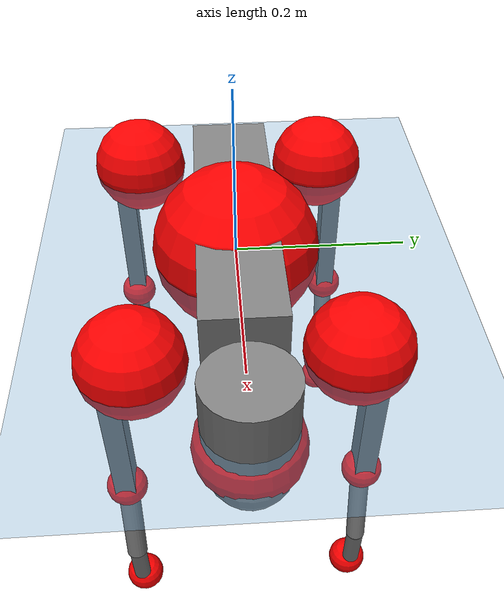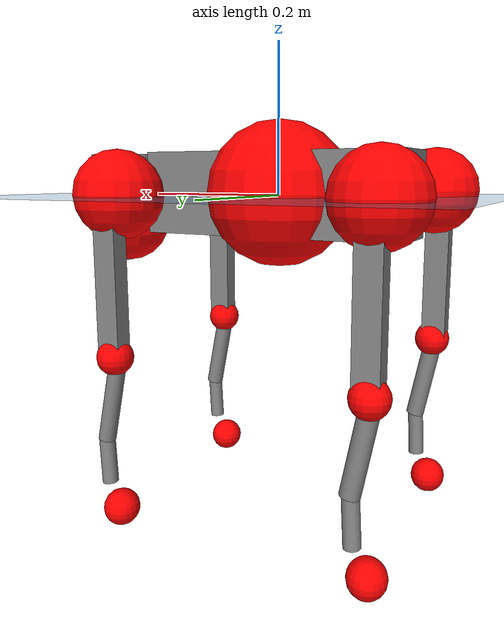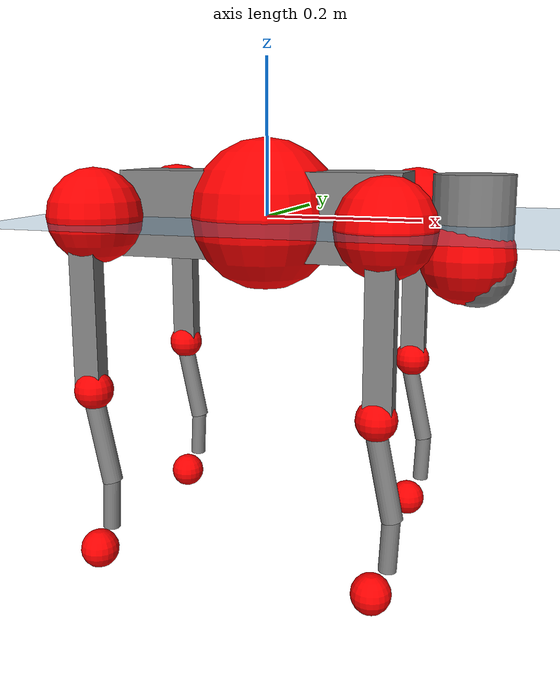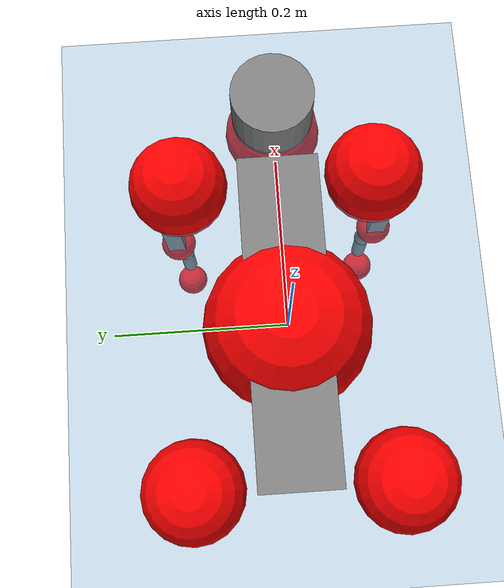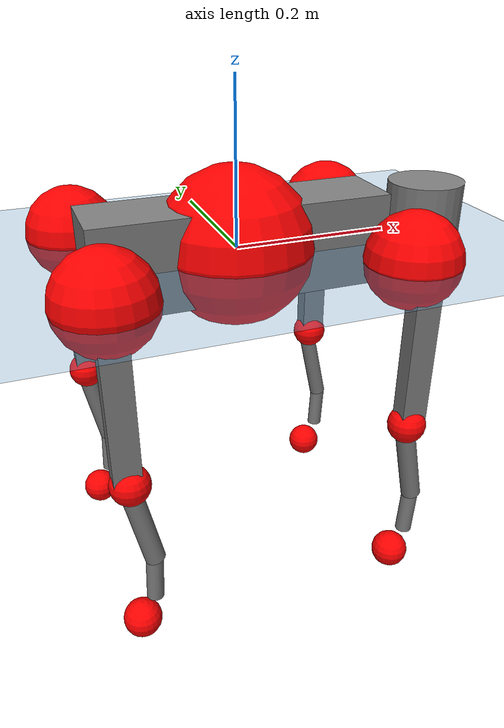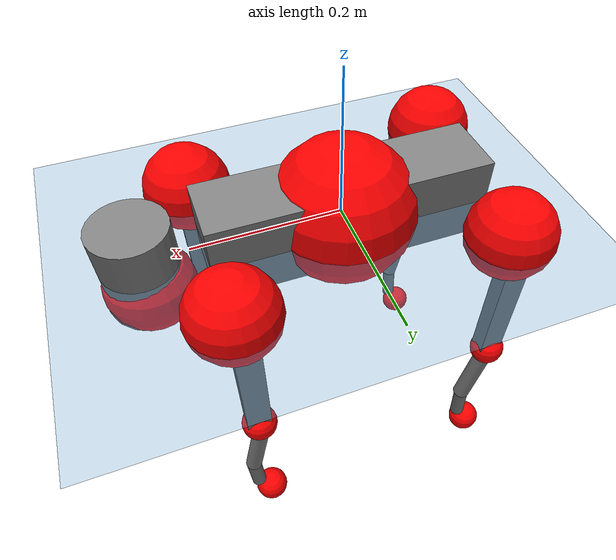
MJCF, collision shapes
<mujoco model="go2">
  <compiler angle="radian" assetdir="assets" balanceinertia="true" inertiafromgeom="false"/>

  <option timestep="0.005" density="1.2" viscosity="2e-05"/>

  <size nkey="1"/>

  <visual>
    <quality shadowsize="8192"/>
    <map shadowclip="0.5"/>
  </visual>

  <default>
    <default class="/">
      <geom contype="0" conaffinity="0" group="1" solref="-1000 -80"/>
      <site size="0.01 0.005 0.005" group="5"/>
      <general forcelimited="true" biastype="affine" gainprm="20" biasprm="0 -20 -0.5"/>
      <default class="go2">
        <joint armature="0.01" damping="0.01" frictionloss="0.2"/>
        <geom condim="1" margin="0.001"/>
        <default class="visual">
          <geom type="mesh" group="2"/>
        </default>
        <default class="collision">
          <geom group="3"/>
          <default class="foot">
            <geom size="0.022 0 0" condim="6" priority="1" friction="0.8 0.02 0.01" solimp="0.015 1 0.022"/>
          </default>
        </default>
        <default class="reward_collision_sphere">
          <geom group="5" rgba="1 0 0 1"/>
        </default>
      </default>
    </default>
  </default>

  <asset>
    <texture type="skybox" colorspace="auto" name="//unnamed_texture_0" builtin="gradient" rgb1="0.95 0.95 0.95" rgb2="0.95 0.95 0.95" width="100" height="600"/>
    <texture type="2d" colorspace="auto" name="texplane" builtin="checker" rgb1="0.345 0.575 0.748" rgb2="0.345 0.575 0.748" markrgb="1 1 1" width="512" height="512"/>
    <material name="MatPlane" class="/" texture="texplane" texuniform="true" texrepeat="2 2" specular="0.9"/>
    <material name="metal" class="/" rgba="0.9 0.95 0.95 1"/>
    <material name="black" class="/" rgba="0 0 0 1"/>
    <material name="white" class="/"/>
    <material name="gray" class="/" rgba="0.671705 0.692426 0.77427 1"/>
    <mesh name="base_0" class="/" file="base_0.obj"/>
    <mesh name="base_1" class="/" file="base_1.obj"/>
    <mesh name="base_2" class="/" file="base_2.obj"/>
    <mesh name="base_3" class="/" file="base_3.obj"/>
    <mesh name="base_4" class="/" file="base_4.obj"/>
    <mesh name="hip_0" class="/" file="hip_0.obj"/>
    <mesh name="hip_1" class="/" file="hip_1.obj"/>
    <mesh name="thigh_0" class="/" file="thigh_0.obj"/>
    <mesh name="thigh_1" class="/" file="thigh_1.obj"/>
    <mesh name="thigh_mirror_0" class="/" file="thigh_mirror_0.obj"/>
    <mesh name="thigh_mirror_1" class="/" file="thigh_mirror_1.obj"/>
    <mesh name="calf_0" class="/" file="calf_0.obj"/>
    <mesh name="calf_1" class="/" file="calf_1.obj"/>
    <mesh name="calf_mirror_0" class="/" file="calf_mirror_0.obj"/>
    <mesh name="calf_mirror_1" class="/" file="calf_mirror_1.obj"/>
    <mesh name="foot" class="/" file="foot.obj"/>
  </asset>

  <worldbody>
    <geom name="floor" class="/" size="100 100 0.125" type="plane" group="0" material="MatPlane"/>
    <light name="toplight_shadow" class="/" pos="0 0 5" dir="0.0990148 0.0990148 -0.990148" type="directional" ambient="0.04 0.04 0.04" diffuse="0.55 0.55 0.55" specular="0.12 0.12 0.12"/>
    <light name="toplight_fill" class="/" pos="0 0 5" dir="0.0990148 0.0990148 -0.990148" type="directional" castshadow="false" ambient="0.04 0.04 0.04" diffuse="0.3 0.3 0.3" specular="0.08 0.08 0.08"/>
    <body name="trunk" childclass="go2" pos="-0.00232677 0.000347398 0.00269945" quat="0.999999 -0.00100119 -0.000814746 -0.000366239">
      <inertial pos="0.0218967 -0.000144744 -0.00825879" quat="0.00869588 0.710843 -0.00392728 0.703286" mass="6.47418" diaginertia="0.0723032 0.109821 0.0258357"/>
      <joint name="//unnamed_joint_0" type="free" armature="0" damping="0" frictionloss="0"/>
      <geom name="//unnamed_geom_1" class="visual" material="black" mesh="base_0"/>
      <geom name="//unnamed_geom_2" class="visual" material="black" mesh="base_1"/>
      <geom name="//unnamed_geom_3" class="visual" material="black" mesh="base_2"/>
      <geom name="//unnamed_geom_4" class="visual" material="white" mesh="base_3"/>
      <geom name="//unnamed_geom_5" class="visual" material="gray" mesh="base_4"/>
      <geom name="trunk_1" class="collision" size="0.185235 0.0460379 0.0561318" type="box"/>
      <geom name="trunk_2" class="collision" size="0.0492384 0.0443146" pos="0.263691 0 0.0100766" type="cylinder"/>
      <geom name="trunk_3" class="collision" size="0.0462841" pos="0.271093 0 -0.0604597"/>
      <geom name="//unnamed_geom_9" class="reward_collision_sphere" size="0.0984768"/>
      <geom name="//unnamed_geom_10" class="reward_collision_sphere" size="0.0590861" pos="0.259065 0 -0.0453447"/>
      <site name="imu" pos="-0.0281088 0.00121572 0.0468781" size="0.00984768"/>
      <camera name="track" pos="0 -2.04282 0" quat="0.707107 0.707107 0 0" mode="trackcom"/>
      <camera name="ego_camera" pos="0.288672 0 0.0453447" quat="-0.5 -0.5 0.5 0.5"/>
      <body name="FL_hip" pos="0.17763 0.0469313 -0.000971206" quat="1 0.000326807 -0.000382961 -2.17345e-05">
        <inertial pos="-0.00503375 0.000926708 0.000196603" quat="0.496354 0.498661 0.50506 0.499885" mass="0.688386" diaginertia="0.000611288 0.000677818 0.000516998"/>
        <joint name="FL_hip_joint" pos="0 0 0" axis="0.999882 -0.000412703 0.0153846" range="-1.04332 1.10234" armature="0.00944352" damping="0.0190939" frictionloss="0.179724"/>
        <geom name="//unnamed_geom_11" class="visual" material="metal" mesh="hip_0"/>
        <geom name="//unnamed_geom_12" class="visual" material="gray" mesh="hip_1"/>
        <geom name="//unnamed_geom_13" class="collision" size="0.0452993 0.0196954" pos="0 0.0817129 0" quat="0.707107 0.707107 0 0" type="cylinder"/>
        <geom name="//unnamed_geom_14" class="reward_collision_sphere" size="0.0590861" pos="0 0.0714988 0"/>
        <body name="FL_thigh" pos="-0.00271175 0.0959525 0.00209559" quat="1 -1.69322e-05 -0.000268187 9.56473e-05">
          <inertial pos="-0.00444284 -0.0223802 -0.0305622" quat="0.83081 0.0843068 -0.0239766 0.549611" mass="1.07867" diaginertia="0.00401251 0.00664548 0.000941786"/>
          <joint name="FL_thigh_joint" pos="0 0 0" axis="-0.009197 0.999941 -0.00576256" stiffness="0.000859887" range="-1.57324 3.52658" armature="0.00868854" damping="0.0114607" frictionloss="0.174314"/>
          <geom name="//unnamed_geom_15" class="visual" material="metal" mesh="thigh_0"/>
          <geom name="//unnamed_geom_16" class="visual" material="gray" mesh="thigh_1"/>
          <geom name="//unnamed_geom_17" class="collision" size="0.104878 0.0120634 0.0167411" pos="0 0 -0.107316" quat="0.707107 0 0.707107 0" type="box"/>
          <body name="FL_calf" pos="-0.00120066 -0.000421921 -0.216309" quat="1 0.000390227 -0.00083399 0.000246805">
            <inertial pos="0.0064807 0.00142394 -0.14476" quat="0.707742 -0.000463697 -0.00504012 0.706452" mass="0.225081" diaginertia="0.000986298 0.00160089 5.54468e-05"/>
            <joint name="FL_calf_joint" pos="0 0 0" axis="0.00304105 0.999993 0.00217465" stiffness="2.69253e-05" range="-2.68569 -0.854904" armature="0.0110623" damping="0.00256078" frictionloss="0.188691"/>
            <geom name="//unnamed_geom_18" class="visual" material="gray" mesh="calf_0"/>
            <geom name="//unnamed_geom_19" class="visual" material="black" mesh="calf_1"/>
            <geom name="FL_calf0" class="collision" size="0.0118172 0.0590861" pos="0.00740186 0 -0.0604597" quat="0.994493 0 -0.104807 0" type="cylinder"/>
            <geom name="//unnamed_geom_21" class="collision" size="0.0108325 0.032005" pos="0.0185046 0 -0.149134" quat="0.999688 0 0.0249974 0" type="cylinder"/>
            <geom name="//unnamed_geom_22" class="visual" pos="0 0 -0.214632" quat="1 0 0 0" material="black" mesh="foot"/>
            <geom name="FL_foot" class="foot" size="0.017559" pos="-0.00185046 0 -0.214632"/>
            <geom name="//unnamed_geom_24" class="reward_collision_sphere" size="0.0246192"/>
            <geom name="//unnamed_geom_25" class="reward_collision_sphere" size="0.0246192" pos="-0.00185046 0 -0.214632"/>
            <site name="FL_foot" class="foot" pos="-0.00185046 0 -0.214632" size="0.00984768"/>
          </body>
        </body>
      </body>
      <body name="FR_hip" pos="0.180124 -0.0448339 -0.00205999" quat="1 0.000286158 -0.000114085 -0.000574327">
        <inertial pos="-0.00691607 0.000813371 -0.00215492" quat="0.501663 0.50359 0.492787 0.501889" mass="0.659959" diaginertia="0.000603936 0.000667567 0.000500049"/>
        <joint name="FR_hip_joint" pos="0 0 0" axis="0.999998 -0.00184771 -0.000925677" stiffness="0.0127458" range="-1.01958 1.05817" armature="0.00949039" damping="0.00620408" frictionloss="0.223916"/>
        <geom name="//unnamed_geom_26" class="visual" pos="0 1.19792e-10 5.13812e-09" quat="4.63268e-05 1 0 0" material="metal" mesh="hip_0"/>
        <geom name="//unnamed_geom_27" class="visual" pos="0 1.94197e-10 -1.27085e-08" quat="4.63268e-05 1 0 0" material="gray" mesh="hip_1"/>
        <geom name="//unnamed_geom_28" class="collision" size="0.0452993 0.0196954" pos="0 -0.0817129 0" quat="0.707107 0.707107 0 0" type="cylinder"/>
        <geom name="//unnamed_geom_29" class="reward_collision_sphere" size="0.0590861" pos="0 -0.0714988 0"/>
        <body name="FR_thigh" pos="0.00246775 -0.0995103 0.000673952" quat="1 -2.92321e-06 3.06649e-05 1.12326e-05">
          <inertial pos="-0.00467192 0.0203436 -0.0351645" quat="0.546628 -0.0252279 0.0927652 0.831839" mass="1.08855" diaginertia="0.00385179 0.00632631 0.000883293"/>
          <joint name="FR_thigh_joint" pos="0 0 0" axis="0.00820159 -0.999949 0.005953" stiffness="0.00060148" range="-3.43747 1.53008" armature="0.00900904" damping="0.0156893" frictionloss="0.223938"/>
          <geom name="//unnamed_geom_30" class="visual" material="metal" mesh="thigh_mirror_0"/>
          <geom name="//unnamed_geom_31" class="visual" material="gray" mesh="thigh_mirror_1"/>
          <geom name="//unnamed_geom_32" class="collision" size="0.104878 0.0120634 0.0167411" pos="0 0 -0.107316" quat="0.707107 0 0.707107 0" type="box"/>
          <body name="FR_calf" pos="-0.00250872 -0.000194484 -0.213926" quat="0.999999 0.000817074 0.000638724 0.000420565">
            <inertial pos="0.00476882 0.000805811 -0.142228" quat="0.703881 -0.0126938 0.00217346 0.710201" mass="0.239472" diaginertia="0.00105614 0.00158998 5.56868e-05"/>
            <joint name="FR_calf_joint" pos="0 0 0" axis="-3.30027e-05 -1 -0.00033161" stiffness="0.00279475" range="0.85985 2.67638" armature="0.0102503" damping="0.00258702" frictionloss="0.223443"/>
            <geom name="//unnamed_geom_33" class="visual" material="gray" mesh="calf_mirror_0"/>
            <geom name="//unnamed_geom_34" class="visual" material="black" mesh="calf_mirror_1"/>
            <geom name="FR_calf0" class="collision" size="0.012802 0.0590861" pos="0.00925232 0 -0.0604597" quat="0.995004 0 -0.0998334 0" type="cylinder"/>
            <geom name="//unnamed_geom_36" class="collision" size="0.0108325 0.032005" pos="0.0185046 0 -0.149134" quat="0.999688 0 0.0249974 0" type="cylinder"/>
            <geom name="//unnamed_geom_37" class="visual" pos="0 0 -0.214632" quat="1 0 0 0" material="black" mesh="foot"/>
            <geom name="FR_foot" class="foot" size="0.0218114" pos="-0.00185046 0 -0.214632"/>
            <geom name="//unnamed_geom_39" class="reward_collision_sphere" size="0.0246192"/>
            <geom name="//unnamed_geom_40" class="reward_collision_sphere" size="0.0246192" pos="-0.00185046 0 -0.214632"/>
            <site name="FR_foot" class="foot" pos="-0.00185046 0 -0.214632" size="0.00984768"/>
          </body>
        </body>
      </body>
      <body name="RL_hip" pos="-0.179077 0.0457758 0.000455977" quat="1 0.000189063 0.000639191 7.25093e-05">
        <inertial pos="0.0045046 0.00390348 0.00260066" quat="0.50666 0.499784 0.493881 0.499593" mass="0.639617" diaginertia="0.000570498 0.000636289 0.000476322"/>
        <joint name="RL_hip_joint" pos="0 0 0" axis="-0.999997 0.00232127 -0.0010391" range="-1.03195 1.09765" armature="0.00970329" damping="0.0142686" frictionloss="0.198862"/>
        <geom name="//unnamed_geom_41" class="visual" pos="7.18085e-10 0 1.40761e-07" quat="4.63268e-05 0 1 0" material="metal" mesh="hip_0"/>
        <geom name="//unnamed_geom_42" class="visual" pos="1.1641e-09 0 1.24835e-07" quat="4.63268e-05 0 1 0" material="gray" mesh="hip_1"/>
        <geom name="//unnamed_geom_43" class="collision" size="0.0452993 0.0196954" pos="0 0.0817129 0" quat="0.707107 0.707107 0 0" type="cylinder"/>
        <geom name="//unnamed_geom_44" class="reward_collision_sphere" size="0.0590861" pos="0 0.0714988 0"/>
        <body name="RL_thigh" pos="-4.80781e-05 0.0941932 0.00147001" quat="0.999999 0.00126962 0.000380125 -0.000295">
          <inertial pos="-0.000976313 -0.019785 -0.0315397" quat="0.830587 0.0815402 -0.0199695 0.550525" mass="1.04242" diaginertia="0.00405694 0.00649339 0.000926187"/>
          <joint name="RL_thigh_joint" pos="0 0 0" axis="0.01016 0.999916 -0.0080244" range="-0.572495 4.503" armature="0.0107264" damping="0.00304074" frictionloss="0.192473"/>
          <geom name="//unnamed_geom_45" class="visual" material="metal" mesh="thigh_0"/>
          <geom name="//unnamed_geom_46" class="visual" material="gray" mesh="thigh_1"/>
          <geom name="//unnamed_geom_47" class="collision" size="0.104878 0.0120634 0.0167411" pos="0 0 -0.107316" quat="0.707107 0 0.707107 0" type="box"/>
          <body name="RL_calf" pos="-0.00230469 0.00138206 -0.217617" quat="1 -0.000229113 0.000179648 0.000123423">
            <inertial pos="0.00823764 -0.000874155 -0.145239" quat="0.715464 -0.00101469 0.00236966 0.698645" mass="0.221898" diaginertia="0.000956805 0.00157486 5.51486e-05"/>
            <joint name="RL_calf_joint" pos="0 0 0" axis="-0.00268207 0.999978 -0.0060707" stiffness="0.0113145" range="-2.7215 -0.866485" armature="0.00937106" damping="0.0032714" frictionloss="0.192598"/>
            <geom name="//unnamed_geom_48" class="visual" material="gray" mesh="calf_0"/>
            <geom name="//unnamed_geom_49" class="visual" material="black" mesh="calf_1"/>
            <geom name="RL_calf0" class="collision" size="0.012802 0.0590861" pos="0.00925232 0 -0.0604597" quat="0.995004 0 -0.0998334 0" type="cylinder"/>
            <geom name="//unnamed_geom_51" class="collision" size="0.0108325 0.032005" pos="0.0185046 0 -0.149134" quat="0.999688 0 0.0249974 0" type="cylinder"/>
            <geom name="//unnamed_geom_52" class="visual" pos="0 0 -0.214632" quat="1 0 0 0" material="black" mesh="foot"/>
            <geom name="RL_foot" class="foot" size="0.0201651" pos="-0.00185046 0 -0.214632"/>
            <geom name="//unnamed_geom_54" class="reward_collision_sphere" size="0.0246192"/>
            <geom name="//unnamed_geom_55" class="reward_collision_sphere" size="0.0246192" pos="-0.00185046 0 -0.214632"/>
            <site name="RL_foot" class="foot" pos="-0.00185046 0 -0.214632" size="0.00984768"/>
          </body>
        </body>
      </body>
      <body name="RR_hip" pos="-0.18137 -0.0472311 0.00335291" quat="1 -0.000654239 -3.35613e-05 -1.24639e-05">
        <inertial pos="0.00284075 0.000514558 0.00114728" quat="0.494415 0.507768 0.499265 0.498458" mass="0.668777" diaginertia="0.00061905 0.000673427 0.000509235"/>
        <joint name="RR_hip_joint" pos="0 0 0" axis="-0.999993 0.000198756 0.00366915" range="-1.04074 1.09796" armature="0.00846005" damping="0" frictionloss="0.196389"/>
        <geom name="//unnamed_geom_56" class="visual" pos="-7.14756e-10 1.19792e-10 1.35623e-07" quat="2.14617e-09 4.63268e-05 4.63268e-05 -1" material="metal" mesh="hip_0"/>
        <geom name="//unnamed_geom_57" class="visual" pos="-1.17234e-09 1.94197e-10 1.37544e-07" quat="2.14617e-09 4.63268e-05 4.63268e-05 -1" material="gray" mesh="hip_1"/>
        <geom name="//unnamed_geom_58" class="collision" size="0.0452993 0.0196954" pos="0 -0.0817129 0" quat="0.707107 0.707107 0 0" type="cylinder"/>
        <geom name="//unnamed_geom_59" class="reward_collision_sphere" size="0.0590861" pos="0 -0.0714988 0"/>
        <body name="RR_thigh" pos="-0.00153937 -0.0955592 0.00100156" quat="1 -4.84281e-05 -1.6987e-05 -3.37256e-06">
          <inertial pos="-0.00413472 0.0250673 -0.0307286" quat="0.551041 -0.0186295 0.0859721 0.829828" mass="1.05744" diaginertia="0.00388052 0.00633447 0.000881046"/>
          <joint name="RR_thigh_joint" pos="0 0 0" axis="-0.000395686 -0.999951 -0.00989564" range="-4.49382 0.472303" armature="0.00911157" damping="0.0219335" frictionloss="0.198839"/>
          <geom name="//unnamed_geom_60" class="visual" material="metal" mesh="thigh_mirror_0"/>
          <geom name="//unnamed_geom_61" class="visual" material="gray" mesh="thigh_mirror_1"/>
          <geom name="//unnamed_geom_62" class="collision" size="0.104878 0.0120634 0.0167411" pos="0 0 -0.107316" quat="0.707107 0 0.707107 0" type="box"/>
          <body name="RR_calf" pos="0.00330205 -0.000443381 -0.217379" quat="1 -0.00026618 -0.000424599 6.06221e-05">
            <inertial pos="0.0063451 -0.00192478 -0.140278" quat="0.701411 -0.00528438 0.00554621 0.712716" mass="0.226614" diaginertia="0.000989301 0.00162464 5.36763e-05"/>
            <joint name="RR_calf_joint" pos="0 0 0" axis="-0.0112264 -0.999884 -0.0102465" stiffness="0.00507032" range="0.843594 2.71326" armature="0.0098912" damping="0.00316201" frictionloss="0.223332"/>
            <geom name="//unnamed_geom_63" class="visual" material="gray" mesh="calf_mirror_0"/>
            <geom name="//unnamed_geom_64" class="visual" material="black" mesh="calf_mirror_1"/>
            <geom name="RR_calf0" class="collision" size="0.012802 0.0590861" pos="0.00925232 0 -0.0604597" quat="0.995004 0 -0.0998334 0" type="cylinder"/>
            <geom name="//unnamed_geom_66" class="collision" size="0.0108325 0.032005" pos="0.0185046 0 -0.149134" quat="0.999688 0 0.0249974 0" type="cylinder"/>
            <geom name="//unnamed_geom_67" class="visual" pos="0 0 -0.214632" quat="1 0 0 0" material="black" mesh="foot"/>
            <geom name="RR_foot" class="foot" size="0.0207104" pos="-0.00185046 0 -0.214632"/>
            <geom name="//unnamed_geom_69" class="reward_collision_sphere" size="0.0246192"/>
            <geom name="//unnamed_geom_70" class="reward_collision_sphere" size="0.0246192" pos="-0.00185046 0 -0.214632"/>
            <site name="RR_foot" class="foot" pos="-0.00185046 0 -0.214632" size="0.00984768"/>
          </body>
        </body>
      </body>
    </body>
  </worldbody>

  <contact>
    <pair class="/" geom1="floor" geom2="FL_foot" name="//unnamed_contact_0"/>
    <pair class="/" geom1="floor" geom2="FR_foot" name="//unnamed_contact_1"/>
    <pair class="/" geom1="floor" geom2="RL_foot" name="//unnamed_contact_2"/>
    <pair class="/" geom1="floor" geom2="RR_foot" name="//unnamed_contact_3"/>
  </contact>

  <actuator>
    <general name="FL_hip" class="/" joint="FL_hip_joint" forcerange="-22.5233 22.5233" gainprm="18.6299" biasprm="0 -18.6299 -0.46414"/>
    <general name="FL_thigh" class="/" joint="FL_thigh_joint" forcerange="-24.4966 24.4966" gainprm="18.6299" biasprm="0 -18.6299 -0.46414"/>
    <general name="FL_calf" class="/" joint="FL_calf_joint" forcerange="-40.1097 40.1097" gainprm="18.6299" biasprm="0 -18.6299 -0.46414"/>
    <general name="FR_hip" class="/" joint="FR_hip_joint" forcerange="-22.4596 22.4596" gainprm="18.6299" biasprm="0 -18.6299 -0.46414"/>
    <general name="FR_thigh" class="/" joint="FR_thigh_joint" forcerange="-24.6257 24.6257" gainprm="18.6299" biasprm="0 -18.6299 -0.46414"/>
    <general name="FR_calf" class="/" joint="FR_calf_joint" forcerange="-41.5845 41.5845" gainprm="18.6299" biasprm="0 -18.6299 -0.46414"/>
    <general name="RL_hip" class="/" joint="RL_hip_joint" forcerange="-23.5954 23.5954" gainprm="18.6299" biasprm="0 -18.6299 -0.46414"/>
    <general name="RL_thigh" class="/" joint="RL_thigh_joint" forcerange="-22.24 22.24" gainprm="18.6299" biasprm="0 -18.6299 -0.46414"/>
    <general name="RL_calf" class="/" joint="RL_calf_joint" forcerange="-49.2232 49.2232" gainprm="18.6299" biasprm="0 -18.6299 -0.46414"/>
    <general name="RR_hip" class="/" joint="RR_hip_joint" forcerange="-22.5245 22.5245" gainprm="18.6299" biasprm="0 -18.6299 -0.46414"/>
    <general name="RR_thigh" class="/" joint="RR_thigh_joint" forcerange="-23.3859 23.3859" gainprm="18.6299" biasprm="0 -18.6299 -0.46414"/>
    <general name="RR_calf" class="/" joint="RR_calf_joint" forcerange="-48.7898 48.7898" gainprm="18.6299" biasprm="0 -18.6299 -0.46414"/>
  </actuator>

  <sensor>
    <gyro site="imu" name="imu_angular_velocity"/>
    <velocimeter site="imu" name="imu_linear_velocity"/>
    <framelinvel objtype="site" objname="FL_foot" name="FL_foot_global_linear_velocity"/>
    <framelinvel objtype="site" objname="FR_foot" name="FR_foot_global_linear_velocity"/>
    <framelinvel objtype="site" objname="RL_foot" name="RL_foot_global_linear_velocity"/>
    <framelinvel objtype="site" objname="RR_foot" name="RR_foot_global_linear_velocity"/>
  </sensor>

  <keyframe>
    <key name="home" qpos="0 0 0.325 1 0 0 0 0.1 0.8 -1.5 -0.1 -0.8 1.5 -0.1 0.8 -1.5 0.1 -0.8 1.5"/>
  </keyframe>
</mujoco>
